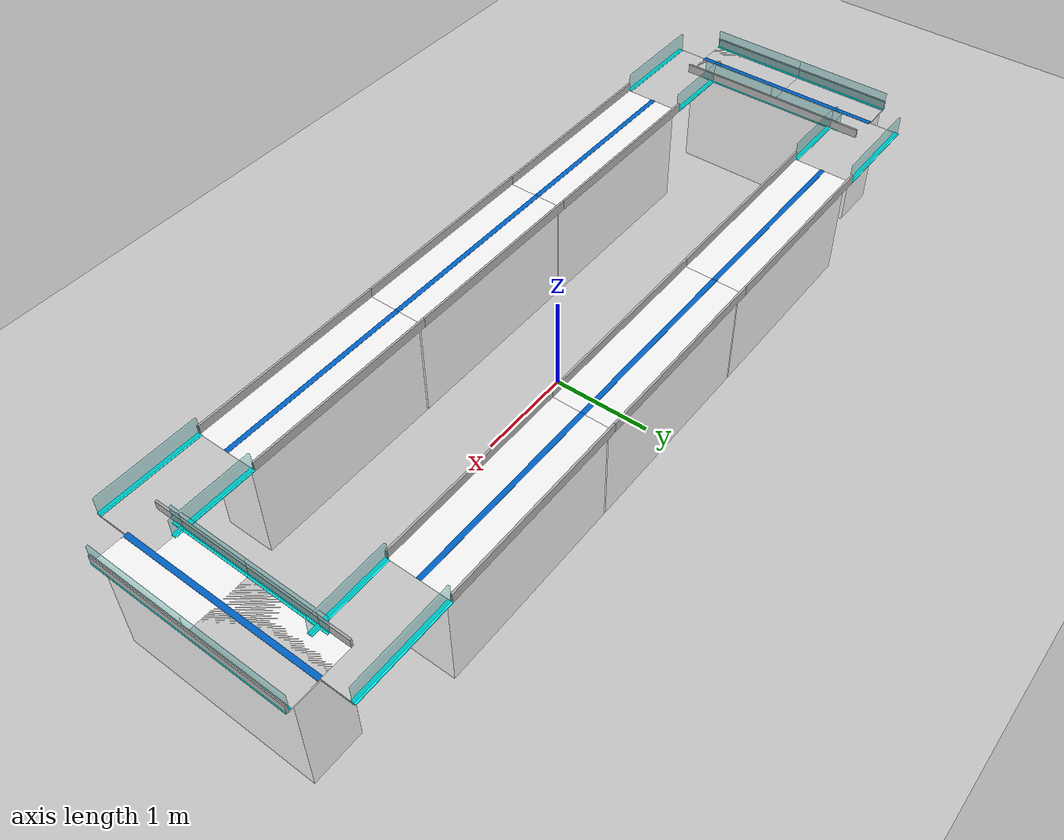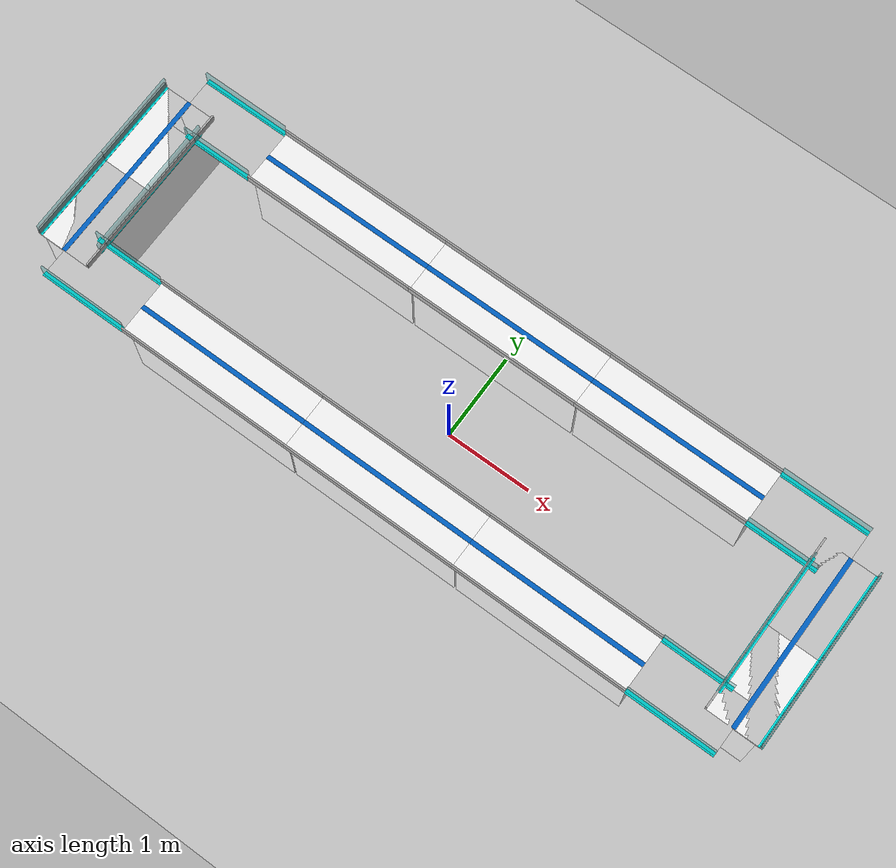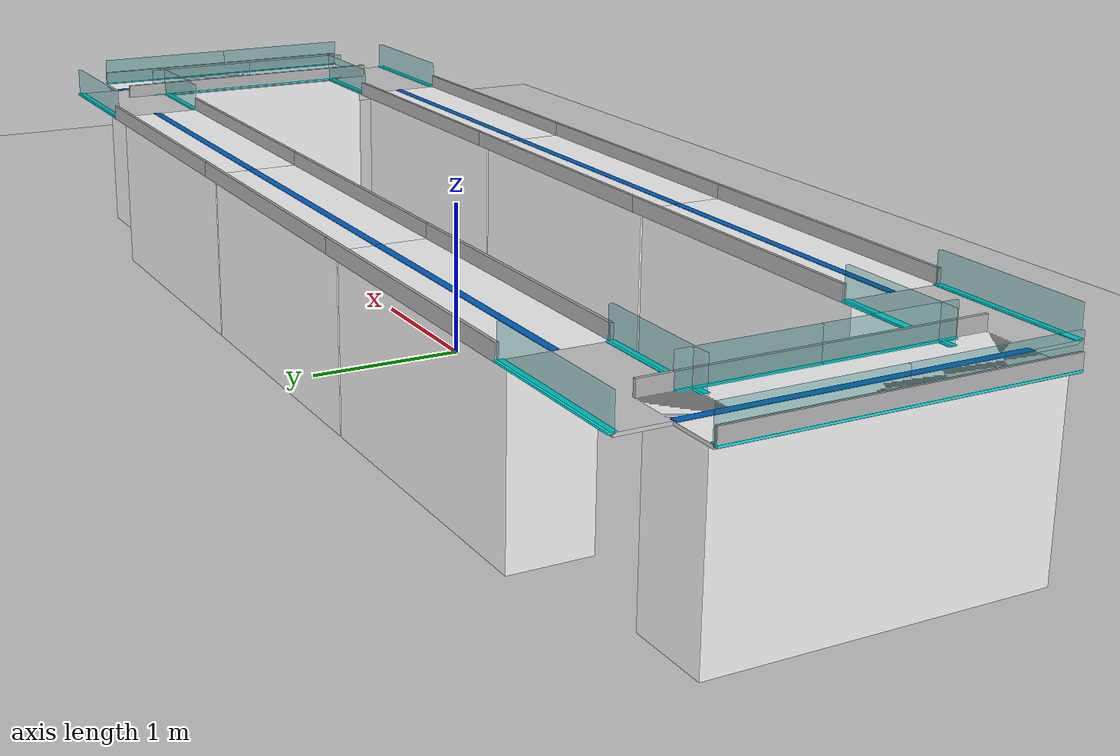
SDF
<sdf version="1.8">
 <world name="staggered_restaurant">
  <physics name="1ms" type="ignored">
   <max_step_size>0.001</max_step_size>
   <real_time_factor>1.0</real_time_factor>
  </physics>
  <plugin filename="ignition-gazebo-physics-system" name="ignition::gazebo::systems::Physics"/>
  <plugin filename="ignition-gazebo-scene-broadcaster-system" name="ignition::gazebo::systems::SceneBroadcaster"/>
  <plugin filename="ignition-gazebo-user-commands-system" name="ignition::gazebo::systems::UserCommands"/>
  <plugin filename="ignition-gazebo-sensors-system" name="ignition::gazebo::systems::Sensors">
   <render_engine>ogre2</render_engine>
  </plugin>
  <light type="directional" name="main_sun">
   <pose>0 0 10 0 0 0</pose>
   <diffuse>1.0 1.0 1.0 1</diffuse>
   <specular>0.5 0.5 0.5 1</specular>
   <direction>-0.5 0.1 -0.9</direction>
  </light>
  <model name="ground_plane">
   <static>true</static>
   <link name="link">
    <collision name="collision"><geometry><plane><normal>0 0 1</normal></plane></geometry></collision>
    <visual name="visual">
     <geometry><plane><normal>0 0 1</normal></plane></geometry>
     <material><ambient>0.8 0.8 0.8 1</ambient><diffuse>0.8 0.8 0.8 1</diffuse></material>
    </visual>
   </link>
  </model>
  <include>
   <uri>file:///home/lequocthinh/Desktop/pythonCode/AI_Waiver/robot_ws/src/ai_waiter_ros/models/delivery_track_corner</uri>
   <name>cnw</name>
   <pose>-4 1 1.1 0 0 -1.5708</pose>
  </include>
  <include>
   <uri>file:///home/lequocthinh/Desktop/pythonCode/AI_Waiver/robot_ws/src/ai_waiter_ros/models/delivery_track</uri>
   <name>t1</name>
   <pose>-2 1 1.1 0 0 0</pose>
  </include>
  <include>
   <uri>file:///home/lequocthinh/Desktop/pythonCode/AI_Waiver/robot_ws/src/ai_waiter_ros/models/delivery_track</uri>
   <name>t2</name>
   <pose>0 1 1.1 0 0 0</pose>
  </include>
  <include>
   <uri>file:///home/lequocthinh/Desktop/pythonCode/AI_Waiver/robot_ws/src/ai_waiter_ros/models/delivery_track</uri>
   <name>t3</name>
   <pose>2 1 1.1 0 0 0</pose>
  </include>
  <include>
   <uri>file:///home/lequocthinh/Desktop/pythonCode/AI_Waiver/robot_ws/src/ai_waiter_ros/models/delivery_track_corner</uri>
   <name>cne</name>
   <pose>4 1 1.1 0 0 3.14159</pose>
  </include>
  <include>
   <uri>file:///home/lequocthinh/Desktop/pythonCode/AI_Waiver/robot_ws/src/ai_waiter_ros/models/delivery_track</uri>
   <name>tr</name>
   <pose>4 0 1.1 0 0 1.5708</pose>
  </include>
  <include>
   <uri>file:///home/lequocthinh/Desktop/pythonCode/AI_Waiver/robot_ws/src/ai_waiter_ros/models/delivery_track_corner</uri>
   <name>cse</name>
   <pose>4 -1 1.1 0 0 1.5708</pose>
  </include>
  <include>
   <uri>file:///home/lequocthinh/Desktop/pythonCode/AI_Waiver/robot_ws/src/ai_waiter_ros/models/delivery_track</uri>
   <name>b1</name>
   <pose>2 -1 1.1 0 0 0</pose>
  </include>
  <include>
   <uri>file:///home/lequocthinh/Desktop/pythonCode/AI_Waiver/robot_ws/src/ai_waiter_ros/models/delivery_track</uri>
   <name>b2</name>
   <pose>0 -1 1.1 0 0 0</pose>
  </include>
  <include>
   <uri>file:///home/lequocthinh/Desktop/pythonCode/AI_Waiver/robot_ws/src/ai_waiter_ros/models/delivery_track</uri>
   <name>b3</name>
   <pose>-2 -1 1.1 0 0 0</pose>
  </include>
  <include>
   <uri>file:///home/lequocthinh/Desktop/pythonCode/AI_Waiver/robot_ws/src/ai_waiter_ros/models/delivery_track_corner</uri>
   <name>csw</name>
   <pose>-4 -1 1.1 0 0 0</pose>
  </include>
  <include>
   <uri>file:///home/lequocthinh/Desktop/pythonCode/AI_Waiver/robot_ws/src/ai_waiter_ros/models/delivery_track</uri>
   <name>tl</name>
   <pose>-4 0 1.1 0 0 1.5708</pose>
  </include>
 </world>
</sdf>

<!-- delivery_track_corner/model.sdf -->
<sdf version="1.8">
  <model name="delivery_track_corner">
    <static>true</static>
    <link name="link">
      <!-- L-Shaped Floor (0.6m wide) -->
      <visual name="floor_h">
        <pose>0.5 0 0 0 0 0</pose>
        <geometry><box><size>1.0 0.6 0.02</size></box></geometry>
        <material><ambient>0.8 0.8 0.8 1</ambient><diffuse>0.8 0.8 0.8 1</diffuse></material>
      </visual>
      <visual name="floor_v">
        <pose>0 0.5 0 0 0 0</pose>
        <geometry><box><size>0.6 1.0 0.02</size></box></geometry>
        <material><ambient>0.8 0.8 0.8 1</ambient><diffuse>0.8 0.8 0.8 1</diffuse></material>
      </visual>

      <!-- Outer Glass Walls (The outer elbow) -->
      <visual name="glass_outer_h">
        <pose>0.5 -0.3 0.1 0 0 0</pose>
        <geometry><box><size>1.0 0.02 0.2</size></box></geometry>
        <material><ambient>0 0.5 0.5 0.3</ambient><diffuse>0 0.5 0.5 0.3</diffuse></material>
      </visual>
      <visual name="glass_outer_v">
        <pose>-0.3 0.5 0.1 0 0 0</pose>
        <geometry><box><size>0.02 1.0 0.2</size></box></geometry>
        <material><ambient>0 0.5 0.5 0.3</ambient><diffuse>0 0.5 0.5 0.3</diffuse></material>
      </visual>

      <!-- Inner Glass Walls (The inner elbow) -->
      <visual name="glass_inner_h">
        <pose>0.6 0.3 0.1 0 0 0</pose>
        <geometry><box><size>0.8 0.02 0.2</size></box></geometry>
        <material><ambient>0 0.5 0.5 0.3</ambient><diffuse>0 0.5 0.5 0.3</diffuse></material>
      </visual>
      <visual name="glass_inner_v">
        <pose>0.3 0.6 0.1 0 0 0</pose>
        <geometry><box><size>0.02 0.8 0.2</size></box></geometry>
        <material><ambient>0 0.5 0.5 0.3</ambient><diffuse>0 0.5 0.5 0.3</diffuse></material>
      </visual>

      <!-- Neon Accents Outer -->
      <visual name="neon_outer_h">
         <pose>0.5 -0.3 0.01 0 0 0</pose>
         <geometry><box><size>1.0 0.05 0.01</size></box></geometry>
         <material><ambient>0 1 1 1</ambient><diffuse>0 1 1 1</diffuse><emissive>0 1 1 1</emissive></material>
      </visual>
      <visual name="neon_outer_v">
         <pose>-0.3 0.5 0.01 0 0 0</pose>
         <geometry><box><size>0.05 1.0 0.01</size></box></geometry>
         <material><ambient>0 1 1 1</ambient><diffuse>0 1 1 1</diffuse><emissive>0 1 1 1</emissive></material>
      </visual>

      <!-- Neon Accents Inner -->
      <visual name="neon_inner_h">
         <pose>0.6 0.3 0.01 0 0 0</pose>
         <geometry><box><size>0.8 0.05 0.01</size></box></geometry>
         <material><ambient>0 1 1 1</ambient><diffuse>0 1 1 1</diffuse><emissive>0 1 1 1</emissive></material>
      </visual>
      <visual name="neon_inner_v">
         <pose>0.3 0.6 0.01 0 0 0</pose>
         <geometry><box><size>0.05 0.8 0.01</size></box></geometry>
         <material><ambient>0 1 1 1</ambient><diffuse>0 1 1 1</diffuse><emissive>0 1 1 1</emissive></material>
      </visual>

      <collision name="c1"><pose>0.5 0 0 0 0 0</pose><geometry><box><size>1.0 0.6 0.02</size></box></geometry></collision>
      <collision name="c2"><pose>0 0.5 0 0 0 0</pose><geometry><box><size>0.6 1.0 0.02</size></box></geometry></collision>
    </link>
  </model>
</sdf>

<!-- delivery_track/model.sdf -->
<sdf version="1.8">
  <model name="delivery_track">
    <static>true</static>
    <link name="link">
      <!-- Main Track Countertop (Pure White) -->
      <visual name="floor">
        <geometry><box><size>2.0 0.6 0.02</size></box></geometry>
        <material>
          <ambient>1 1 1 1</ambient>
          <diffuse>1 1 1 1</diffuse>
          <specular>0.8 0.8 0.8 1</specular>
        </material>
      </visual>
      <collision name="floor_c">
        <geometry><box><size>2.0 0.6 0.02</size></box></geometry>
      </collision>

      <!-- SOLID WHITE PEDESTAL (To ground) - Visual only to avoid ODE crashes -->
      <visual name="pedestal">
        <pose>0 0 -0.55 0 0 0</pose>
        <geometry><box><size>1.98 0.5 1.1</size></box></geometry>
        <material>
          <ambient>0.95 0.95 0.95 1</ambient>
          <diffuse>0.95 0.95 0.95 1</diffuse>
        </material>
      </visual>

      <!-- Right Silver Rail (Low Height) -->
      <visual name="rail_right">
        <pose>0 -0.31 0.05 0 0 0</pose>
        <geometry><box><size>2.0 0.02 0.1</size></box></geometry>
        <material>
          <ambient>0.7 0.7 0.7 1</ambient>
          <diffuse>0.7 0.7 0.7 1</diffuse>
          <specular>1 1 1 1</specular>
        </material>
      </visual>

      <!-- Left Silver Rail (Low Height) -->
      <visual name="rail_left">
        <pose>0 0.31 0.05 0 0 0</pose>
        <geometry><box><size>2.0 0.02 0.1</size></box></geometry>
        <material>
          <ambient>0.7 0.7 0.7 1</ambient>
          <diffuse>0.7 0.7 0.7 1</diffuse>
          <specular>1 1 1 1</specular>
        </material>
      </visual>

      <!-- Blue Tech Accent Strip -->
      <visual name="accent">
        <pose>0 0 0.011 0 0 0</pose>
        <geometry><box><size>2.0 0.05 0.005</size></box></geometry>
        <material>
          <ambient>0 0.4 0.8 1</ambient>
          <diffuse>0 0.4 0.8 1</diffuse>
          <emissive>0 0.2 0.4 1</emissive>
        </material>
      </visual>
    </link>
  </model>
</sdf>
